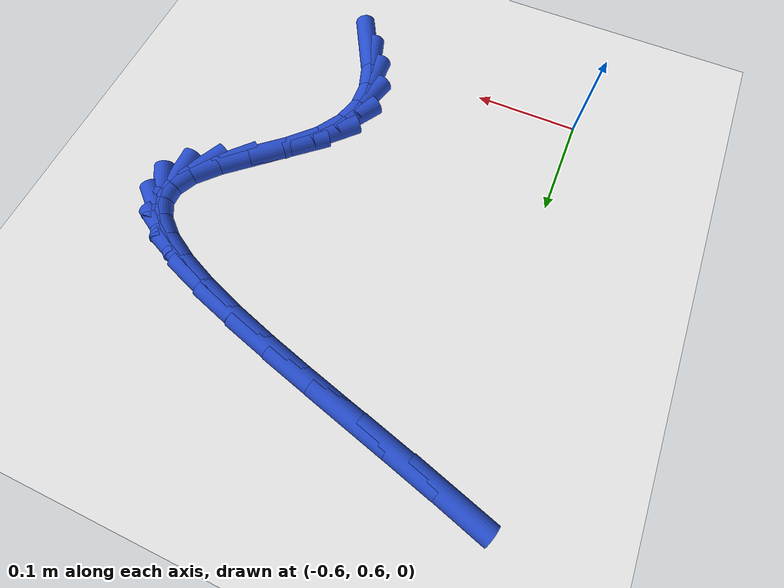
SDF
<sdf version="1.6">
 <world name="default">
  <model name="ground_plane">
   <static>1</static>
   <link name="link">
    <collision name="collision">
     <geometry><plane><normal>0 0 1</normal><size>100 100</size></plane></geometry>
     <surface><friction><ode><mu>100</mu><mu2>50</mu2></ode></friction></surface>
    </collision>
    <visual name="visual">
     <cast_shadows>0</cast_shadows>
     <geometry><plane><normal>0 0 1</normal><size>100 100</size></plane></geometry>
     <material>
      <script><uri>file://media/materials/scripts/gazebo.material</uri><name>Gazebo/WhiteGlow</name></script>
     </material>
    </visual>
   </link>
  </model>
  <model name="line">
   <link name="link_20">
    <pose>-0.3709961122994293 0.5946077295545851 0.01 0 1.57 -1.0794884615568994</pose>
    <collision name="collision">
     <geometry><cylinder><radius>0.01</radius><length>0.08</length></cylinder></geometry>
    </collision>
    <visual name="visual">
     <material>
      <script><name>Gazebo/Blue</name><uri>file://media/materials/scripts/gazebo.material</uri></script>
     </material>
     <geometry><cylinder><radius>0.01</radius><length>0.08</length></cylinder></geometry>
    </visual>
   </link>
   <link name="link_21">
    <pose>-0.38442237421646264 0.6197002969894788 0.01 0 1.57 -1.2744287445054</pose>
    <collision name="collision">
     <geometry><cylinder><radius>0.01</radius><length>0.08</length></cylinder></geometry>
    </collision>
    <visual name="visual">
     <material>
      <script><name>Gazebo/Blue</name><uri>file://media/materials/scripts/gazebo.material</uri></script>
     </material>
     <geometry><cylinder><radius>0.01</radius><length>0.08</length></cylinder></geometry>
    </visual>
   </link>
   <link name="link_22">
    <pose>-0.3920057070909488 0.6445343142345655 0.01 0 1.57 -1.5322484609181006</pose>
    <collision name="collision">
     <geometry><cylinder><radius>0.01</radius><length>0.08</length></cylinder></geometry>
    </collision>
    <visual name="visual">
     <material>
      <script><name>Gazebo/Blue</name><uri>file://media/materials/scripts/gazebo.material</uri></script>
     </material>
     <geometry><cylinder><radius>0.01</radius><length>0.08</length></cylinder></geometry>
    </visual>
   </link>
   <link name="link_23">
    <pose>-0.392954703381622 0.6691407657891597 0.01 0 1.57 1.3114393307876295</pose>
    <collision name="collision">
     <geometry><cylinder><radius>0.01</radius><length>0.08</length></cylinder></geometry>
    </collision>
    <visual name="visual">
     <material>
      <script><name>Gazebo/Blue</name><uri>file://media/materials/scripts/gazebo.material</uri></script>
     </material>
     <geometry><cylinder><radius>0.01</radius><length>0.08</length></cylinder></geometry>
    </visual>
   </link>
   <link name="link_24">
    <pose>-0.3864779555472164 0.6935506361525754 0.01 0 1.57 1.025920335630295</pose>
    <collision name="collision">
     <geometry><cylinder><radius>0.01</radius><length>0.08</length></cylinder></geometry>
    </collision>
    <visual name="visual">
     <material>
      <script><name>Gazebo/Blue</name><uri>file://media/materials/scripts/gazebo.material</uri></script>
     </material>
     <geometry><cylinder><radius>0.01</radius><length>0.08</length></cylinder></geometry>
    </visual>
   </link>
   <link name="link_25">
    <pose>-0.3717840560464664 0.7177949098241267 0.01 0 1.57 0.8119694466412167</pose>
    <collision name="collision">
     <geometry><cylinder><radius>0.01</radius><length>0.08</length></cylinder></geometry>
    </collision>
    <visual name="visual">
     <material>
      <script><name>Gazebo/Blue</name><uri>file://media/materials/scripts/gazebo.material</uri></script>
     </material>
     <geometry><cylinder><radius>0.01</radius><length>0.08</length></cylinder></geometry>
    </visual>
   </link>
   <link name="link_26">
    <pose>-0.34899133599440757 0.7418322578082579 0.01 0 1.57 0.7193835196760918</pose>
    <collision name="collision">
     <geometry><cylinder><radius>0.01</radius><length>0.08</length></cylinder></geometry>
    </collision>
    <visual name="visual">
     <material>
      <script><name>Gazebo/Blue</name><uri>file://media/materials/scripts/gazebo.material</uri></script>
     </material>
     <geometry><cylinder><radius>0.01</radius><length>0.08</length></cylinder></geometry>
    </visual>
   </link>
   <link name="link_27">
    <pose>-0.32219502037355247 0.7653052349453995 0.01 0 1.57 0.7199081258582579</pose>
    <collision name="collision">
     <geometry><cylinder><radius>0.01</radius><length>0.08</length></cylinder></geometry>
    </collision>
    <visual name="visual">
     <material>
      <script><name>Gazebo/Blue</name><uri>file://media/materials/scripts/gazebo.material</uri></script>
     </material>
     <geometry><cylinder><radius>0.01</radius><length>0.08</length></cylinder></geometry>
    </visual>
   </link>
   <link name="link_28">
    <pose>-0.2965767435345856 0.7877700393429494 0.01 0 1.57 0.8288099615309701</pose>
    <collision name="collision">
     <geometry><cylinder><radius>0.01</radius><length>0.08</length></cylinder></geometry>
    </collision>
    <visual name="visual">
     <material>
      <script><name>Gazebo/Blue</name><uri>file://media/materials/scripts/gazebo.material</uri></script>
     </material>
     <geometry><cylinder><radius>0.01</radius><length>0.08</length></cylinder></geometry>
    </visual>
   </link>
   <link name="link_29">
    <pose>-0.2773129616532416 0.8087834247080015 0.01 0 1.57 1.1197725075640763</pose>
    <collision name="collision">
     <geometry><cylinder><radius>0.01</radius><length>0.08</length></cylinder></geometry>
    </collision>
    <visual name="visual">
     <material>
      <script><name>Gazebo/Blue</name><uri>file://media/materials/scripts/gazebo.material</uri></script>
     </material>
     <geometry><cylinder><radius>0.01</radius><length>0.08</length></cylinder></geometry>
    </visual>
   </link>
   <link name="link_30">
    <pose>-0.26796984127856066 0.8280747012228605 0.01 0 1.57 -1.5559711725776897</pose>
    <collision name="collision">
     <geometry><cylinder><radius>0.01</radius><length>0.08</length></cylinder></geometry>
    </collision>
    <visual name="visual">
     <material>
      <script><name>Gazebo/Blue</name><uri>file://media/materials/scripts/gazebo.material</uri></script>
     </material>
     <geometry><cylinder><radius>0.01</radius><length>0.08</length></cylinder></geometry>
    </visual>
   </link>
   <link name="link_31">
    <pose>-0.26823247875937084 0.8457890693436699 0.01 0 1.57 -1.0683605734121773</pose>
    <collision name="collision">
     <geometry><cylinder><radius>0.01</radius><length>0.08</length></cylinder></geometry>
    </collision>
    <visual name="visual">
     <material>
      <script><name>Gazebo/Blue</name><uri>file://media/materials/scripts/gazebo.material</uri></script>
     </material>
     <geometry><cylinder><radius>0.01</radius><length>0.08</length></cylinder></geometry>
    </visual>
   </link>
   <link name="link_32">
    <pose>-0.2772130369258734 0.8621331243134874 0.01 0 1.57 -0.7344808252903453</pose>
    <collision name="collision">
     <geometry><cylinder><radius>0.01</radius><length>0.08</length></cylinder></geometry>
    </collision>
    <visual name="visual">
     <material>
      <script><name>Gazebo/Blue</name><uri>file://media/materials/scripts/gazebo.material</uri></script>
     </material>
     <geometry><cylinder><radius>0.01</radius><length>0.08</length></cylinder></geometry>
    </visual>
   </link>
   <link name="link_33">
    <pose>-0.29402367860827 0.8773134613753719 0.01 0 1.57 -0.5395362167631712</pose>
    <collision name="collision">
     <geometry><cylinder><radius>0.01</radius><length>0.08</length></cylinder></geometry>
    </collision>
    <visual name="visual">
     <material>
      <script><name>Gazebo/Blue</name><uri>file://media/materials/scripts/gazebo.material</uri></script>
     </material>
     <geometry><cylinder><radius>0.01</radius><length>0.08</length></cylinder></geometry>
    </visual>
   </link>
   <link name="link_34">
    <pose>-0.3177765666367625 0.8915366757723823 0.01 0 1.57 -0.42450999438575854</pose>
    <collision name="collision">
     <geometry><cylinder><radius>0.01</radius><length>0.08</length></cylinder></geometry>
    </collision>
    <visual name="visual">
     <material>
      <script><name>Gazebo/Blue</name><uri>file://media/materials/scripts/gazebo.material</uri></script>
     </material>
     <geometry><cylinder><radius>0.01</radius><length>0.08</length></cylinder></geometry>
    </visual>
   </link>
   <link name="link_35">
    <pose>-0.34758386384155243 0.9050093627475775 0.01 0 1.57 -0.35408873358761106</pose>
    <collision name="collision">
     <geometry><cylinder><radius>0.01</radius><length>0.08</length></cylinder></geometry>
    </collision>
    <visual name="visual">
     <material>
      <script><name>Gazebo/Blue</name><uri>file://media/materials/scripts/gazebo.material</uri></script>
     </material>
     <geometry><cylinder><radius>0.01</radius><length>0.08</length></cylinder></geometry>
    </visual>
   </link>
   <link name="link_36">
    <pose>-0.382557733052841 0.9179381175440154 0.01 0 1.57 -0.3104095815001408</pose>
    <collision name="collision">
     <geometry><cylinder><radius>0.01</radius><length>0.08</length></cylinder></geometry>
    </collision>
    <visual name="visual">
     <material>
      <script><name>Gazebo/Blue</name><uri>file://media/materials/scripts/gazebo.material</uri></script>
     </material>
     <geometry><cylinder><radius>0.01</radius><length>0.08</length></cylinder></geometry>
    </visual>
   </link>
   <link name="link_37">
    <pose>-0.42181033710083005 0.9305295354047555 0.01 0 1.57 -0.28429085134923404</pose>
    <collision name="collision">
     <geometry><cylinder><radius>0.01</radius><length>0.08</length></cylinder></geometry>
    </collision>
    <visual name="visual">
     <material>
      <script><name>Gazebo/Blue</name><uri>file://media/materials/scripts/gazebo.material</uri></script>
     </material>
     <geometry><cylinder><radius>0.01</radius><length>0.08</length></cylinder></geometry>
    </visual>
   </link>
   <link name="link_38">
    <pose>-0.46445383881572166 0.9429902115728563 0.01 0 1.57 -0.2708608520059833</pose>
    <collision name="collision">
     <geometry><cylinder><radius>0.01</radius><length>0.08</length></cylinder></geometry>
    </collision>
    <visual name="visual">
     <material>
      <script><name>Gazebo/Blue</name><uri>file://media/materials/scripts/gazebo.material</uri></script>
     </material>
     <geometry><cylinder><radius>0.01</radius><length>0.08</length></cylinder></geometry>
    </visual>
   </link>
   <link name="link_39">
    <pose>-0.5096004010277171 0.9555267412913764 0.01 0 1.57 -0.26756058522104575</pose>
    <collision name="collision">
     <geometry><cylinder><radius>0.01</radius><length>0.08</length></cylinder></geometry>
    </collision>
    <visual name="visual">
     <material>
      <script><name>Gazebo/Blue</name><uri>file://media/materials/scripts/gazebo.material</uri></script>
     </material>
     <geometry><cylinder><radius>0.01</radius><length>0.08</length></cylinder></geometry>
    </visual>
   </link>
   <link name="link_40">
    <pose>-0.5563621865670174 0.9683457198033746 0.01 0 1.57 -0.2732245457701548</pose>
    <collision name="collision">
     <geometry><cylinder><radius>0.01</radius><length>0.08</length></cylinder></geometry>
    </collision>
    <visual name="visual">
     <material>
      <script><name>Gazebo/Blue</name><uri>file://media/materials/scripts/gazebo.material</uri></script>
     </material>
     <geometry><cylinder><radius>0.01</radius><length>0.08</length></cylinder></geometry>
    </visual>
   </link>
   <link name="link_41">
    <pose>-0.6038513582638247 0.9816537423519094 0.01 0 1.57 -0.28767348124354297</pose>
    <collision name="collision">
     <geometry><cylinder><radius>0.01</radius><length>0.08</length></cylinder></geometry>
    </collision>
    <visual name="visual">
     <material>
      <script><name>Gazebo/Blue</name><uri>file://media/materials/scripts/gazebo.material</uri></script>
     </material>
     <geometry><cylinder><radius>0.01</radius><length>0.08</length></cylinder></geometry>
    </visual>
   </link>
  </model>
 </world>
</sdf>
